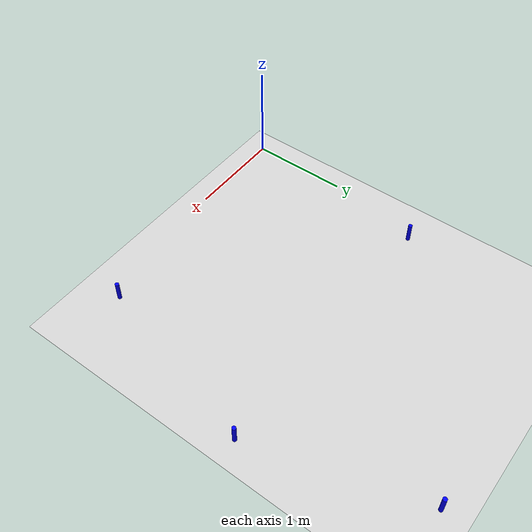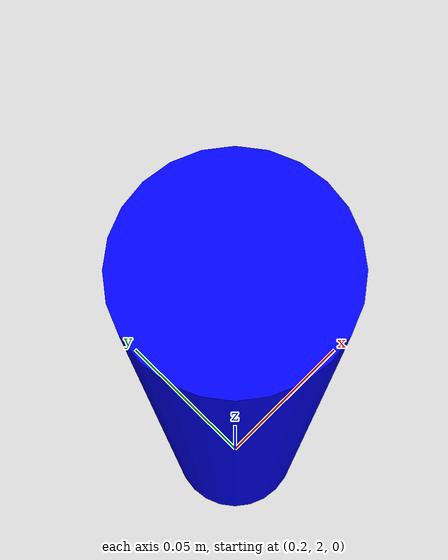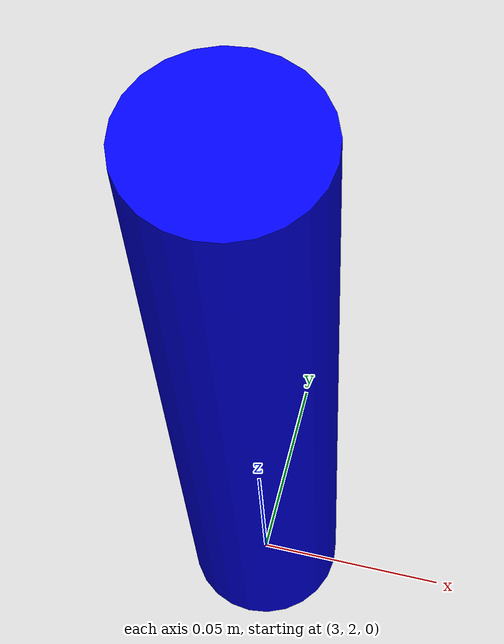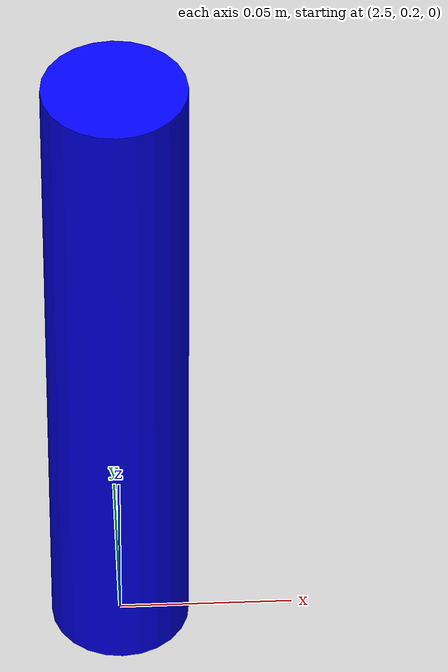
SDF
<sdf version="1.6">
 <world name="default">
  <physics type="ode">
   <real_time_update_rate>1000.0</real_time_update_rate>
   <max_step_size>0.001</max_step_size>
   <real_time_factor>1</real_time_factor>
   <ode>
    <solver>
     <type>quick</type>
     <iters>150</iters>
     <precon_iters>0</precon_iters>
     <sor>1.400000</sor>
     <use_dynamic_moi_rescaling>1</use_dynamic_moi_rescaling>
    </solver>
    <constraints>
     <cfm>0.00001</cfm>
     <erp>0.2</erp>
     <contact_max_correcting_vel>2000.000000</contact_max_correcting_vel>
     <contact_surface_layer>0.01000</contact_surface_layer>
    </constraints>
   </ode>
  </physics>
  <include><uri>model://ground_plane</uri></include>
  <include><uri>model://sun</uri></include>
  <model name="Obstacle1">
   <pose>2.5 0.2 0.1 0 0 0</pose>
   <static>true</static>
   <link name="link">
    <visual name="visual">
     <geometry><cylinder><radius>0.02</radius><length>0.20</length></cylinder></geometry>
     <material><ambient>0 0 1 1</ambient></material>
    </visual>
    <collision name="collision">
     <geometry><cylinder><radius>0.03</radius><length>0.20</length></cylinder></geometry>
     <surface><friction><ode><mu>10</mu><mu2>10</mu2></ode></friction></surface>
    </collision>
   </link>
  </model>
  <model name="Obstacle2">
   <pose>0.2 2.0 0.1 0 0 0</pose>
   <static>true</static>
   <link name="link">
    <visual name="visual">
     <geometry><cylinder><radius>0.02</radius><length>0.20</length></cylinder></geometry>
     <material><ambient>0 0 1 1</ambient></material>
    </visual>
    <collision name="collision">
     <geometry><cylinder><radius>0.03</radius><length>0.20</length></cylinder></geometry>
     <surface><friction><ode><mu>10</mu><mu2>10</mu2></ode></friction></surface>
    </collision>
   </link>
  </model>
  <model name="Obstacle3">
   <pose>3.0 2.0 0.1 0 0 0</pose>
   <static>true</static>
   <link name="link">
    <visual name="visual">
     <geometry><cylinder><radius>0.02</radius><length>0.20</length></cylinder></geometry>
     <material><ambient>0 0 1 1</ambient></material>
    </visual>
    <collision name="collision">
     <geometry><cylinder><radius>0.03</radius><length>0.20</length></cylinder></geometry>
     <surface><friction><ode><mu>10</mu><mu2>10</mu2></ode></friction></surface>
    </collision>
   </link>
  </model>
  <model name="Obstacle4">
   <pose>2.5 3.65 0.1 0 0 0</pose>
   <static>false</static>
   <link name="link">
    <visual name="visual">
     <geometry><cylinder><radius>0.02</radius><length>0.20</length></cylinder></geometry>
     <material><ambient>0 0 1 1</ambient></material>
    </visual>
    <collision name="collision">
     <geometry><cylinder><radius>0.03</radius><length>0.20</length></cylinder></geometry>
     <surface><friction><ode><mu>10</mu><mu2>10</mu2></ode></friction></surface>
    </collision>
   </link>
  </model>
 </world>
</sdf>
